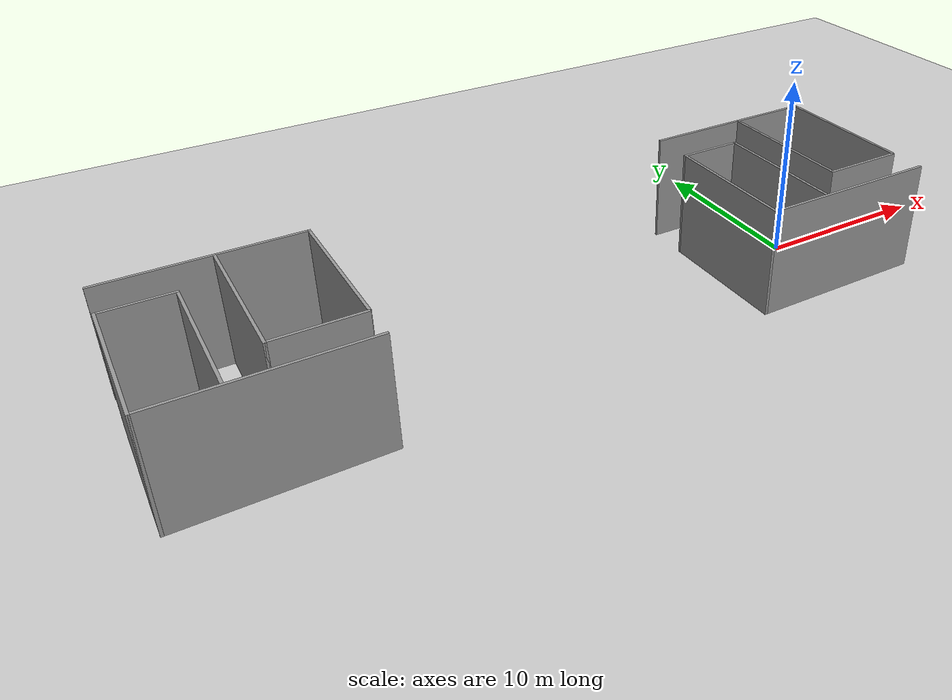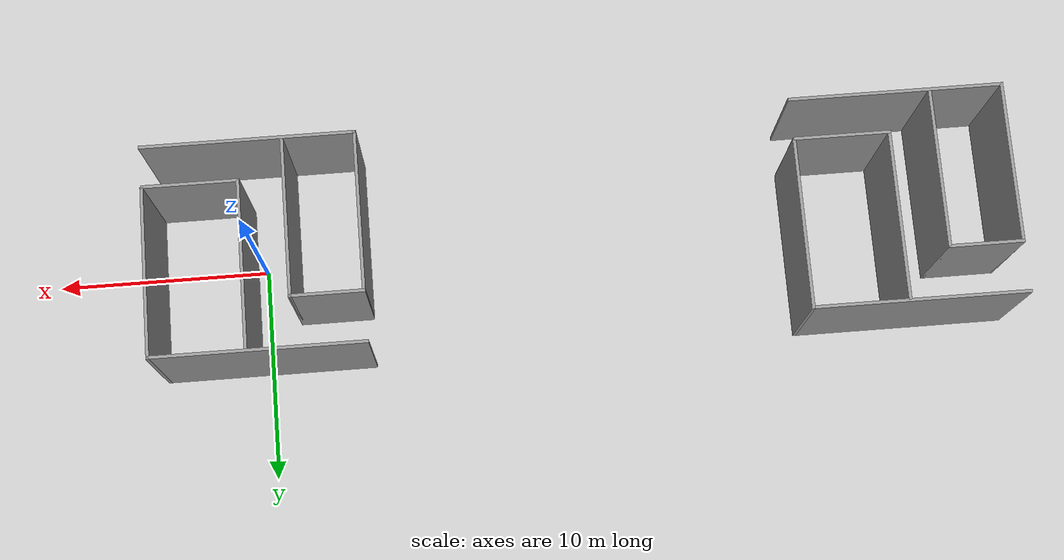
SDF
<sdf version="1.6">
 <world name="default">
  <light name="sun" type="directional">
   <pose>0 0 10 0 -0 0</pose>
   <diffuse>0.8 0.8 0.8 1</diffuse>
   <specular>0.2 0.2 0.2 1</specular>
   <attenuation>
    <range>1000</range>
    <constant>0.9</constant>
    <linear>0.01</linear>
    <quadratic>0.001</quadratic>
   </attenuation>
   <direction>-0.5 0.1 -0.9</direction>
  </light>
  <model name="ground_plane">
   <static>1</static>
   <link name="link">
    <collision name="collision">
     <geometry><plane><normal>0 0 1</normal><size>100 100</size></plane></geometry>
     <surface>
      <contact><collide_bitmask>65535</collide_bitmask></contact>
      <friction><ode><mu>100</mu><mu2>50</mu2></ode></friction>
     </surface>
    </collision>
    <visual name="visual">
     <cast_shadows>0</cast_shadows>
     <geometry><plane><normal>0 0 1</normal><size>100 100</size></plane></geometry>
     <material>
      <script><uri>file://media/materials/scripts/gazebo.material</uri><name>Gazebo/Grey</name></script>
     </material>
    </visual>
   </link>
  </model>
  <gravity>0 0 -9.8</gravity>
  <magnetic_field>6e-06 2.3e-05 -4.2e-05</magnetic_field>
  <atmosphere type="adiabatic"/>
  <physics name="default_physics" default="0" type="ode">
   <max_step_size>0.001</max_step_size>
   <real_time_factor>1</real_time_factor>
   <real_time_update_rate>1000</real_time_update_rate>
  </physics>
  <scene><ambient>0.4 0.4 0.4 1</ambient><background>0.7 0.7 0.7 1</background><shadows>1</shadows></scene>
  <spherical_coordinates>
   <surface_model>EARTH_WGS84</surface_model>
   <latitude_deg>0</latitude_deg>
   <longitude_deg>0</longitude_deg>
   <elevation>0</elevation>
   <heading_deg>0</heading_deg>
  </spherical_coordinates>
  <model name="floor12">
   <link name="Wall_10">
    <collision name="Wall_10_Collision">
     <geometry><box><size>4.5 0.15 6</size></box></geometry>
     <pose>0 0 3 0 -0 0</pose>
    </collision>
    <visual name="Wall_10_Visual">
     <pose>0 0 3 0 -0 0</pose>
     <geometry><box><size>4.5 0.15 6</size></box></geometry>
     <material>
      <script><uri>file://media/materials/scripts/gazebo.material</uri><name>Gazebo/Grey</name></script>
      <ambient>1 1 1 1</ambient>
     </material>
     <meta><layer>0</layer></meta>
    </visual>
    <pose>2.7 -3.025 0 0 -0 0</pose>
   </link>
   <link name="Wall_12">
    <collision name="Wall_12_Collision">
     <geometry><box><size>7.5 0.15 6</size></box></geometry>
     <pose>0 0 3 0 -0 0</pose>
    </collision>
    <visual name="Wall_12_Visual">
     <pose>0 0 3 0 -0 0</pose>
     <geometry><box><size>7.5 0.15 6</size></box></geometry>
     <material>
      <script><uri>file://media/materials/scripts/gazebo.material</uri><name>Gazebo/Grey</name></script>
      <ambient>1 1 1 1</ambient>
     </material>
     <meta><layer>0</layer></meta>
    </visual>
    <pose>-1.575 -1.1 0 0 0 -1.5708</pose>
   </link>
   <link name="Wall_14">
    <collision name="Wall_14_Collision">
     <geometry><box><size>7.65 0.15 6</size></box></geometry>
     <pose>0 0 3 0 -0 0</pose>
    </collision>
    <visual name="Wall_14_Visual">
     <pose>0 0 3 0 -0 0</pose>
     <geometry><box><size>7.65 0.15 6</size></box></geometry>
     <material>
      <script><uri>file://media/materials/scripts/gazebo.material</uri><name>Gazebo/Grey</name></script>
      <ambient>1 1 1 1</ambient>
     </material>
     <meta><layer>0</layer></meta>
    </visual>
    <pose>-4.925 -1.175 0 0 0 -1.5708</pose>
   </link>
   <link name="Wall_16">
    <collision name="Wall_16_Collision">
     <geometry><box><size>8 0.15 6</size></box></geometry>
     <pose>0 0 3 0 -0 0</pose>
    </collision>
    <visual name="Wall_16_Visual">
     <pose>0 0 3 0 -0 0</pose>
     <geometry><box><size>8 0.15 6</size></box></geometry>
     <material>
      <script><uri>file://media/materials/scripts/gazebo.material</uri><name>Gazebo/Grey</name></script>
      <ambient>1 1 1 1</ambient>
     </material>
     <meta><layer>0</layer></meta>
    </visual>
    <pose>4.925 1 0 0 0 -1.5708</pose>
   </link>
   <link name="Wall_2">
    <collision name="Wall_2_Collision">
     <geometry><box><size>10 0.15 6</size></box></geometry>
     <pose>0 0 3 0 -0 0</pose>
    </collision>
    <visual name="Wall_2_Visual">
     <pose>0 0 3 0 -0 0</pose>
     <geometry><box><size>10 0.15 6</size></box></geometry>
     <material>
      <script><uri>file://media/materials/scripts/gazebo.material</uri><name>Gazebo/Grey</name></script>
      <ambient>1 1 1 1</ambient>
     </material>
     <meta><layer>0</layer></meta>
    </visual>
    <pose>0 -4.925 0 0 -0 0</pose>
   </link>
   <link name="Wall_4">
    <collision name="Wall_4_Collision">
     <geometry><box><size>10 0.15 6</size></box></geometry>
     <pose>0 0 3 0 -0 0</pose>
    </collision>
    <visual name="Wall_4_Visual">
     <pose>0 0 3 0 -0 0</pose>
     <geometry><box><size>10 0.15 6</size></box></geometry>
     <material>
      <script><uri>file://media/materials/scripts/gazebo.material</uri><name>Gazebo/Grey</name></script>
      <ambient>1 1 1 1</ambient>
     </material>
     <meta><layer>0</layer></meta>
    </visual>
    <pose>0 4.925 0 0 -0 3.14159</pose>
   </link>
   <link name="Wall_7">
    <collision name="Wall_7_Collision">
     <geometry><box><size>3.5 0.15 6</size></box></geometry>
     <pose>0 0 3 0 -0 0</pose>
    </collision>
    <visual name="Wall_7_Visual">
     <pose>0 0 3 0 -0 0</pose>
     <geometry><box><size>3.5 0.15 6</size></box></geometry>
     <material>
      <script><uri>file://media/materials/scripts/gazebo.material</uri><name>Gazebo/Grey</name></script>
      <ambient>1 1 1 1</ambient>
     </material>
     <meta><layer>0</layer></meta>
    </visual>
    <pose>-3.25 2.575 0 0 -0 0</pose>
   </link>
   <link name="Wall_9">
    <collision name="Wall_9_Collision">
     <geometry><box><size>8 0.15 6</size></box></geometry>
     <pose>0 0 3 0 -0 0</pose>
    </collision>
    <visual name="Wall_9_Visual">
     <pose>0 0 3 0 -0 0</pose>
     <geometry><box><size>8 0.15 6</size></box></geometry>
     <material>
      <script><uri>file://media/materials/scripts/gazebo.material</uri><name>Gazebo/Grey</name></script>
      <ambient>1 1 1 1</ambient>
     </material>
     <meta><layer>0</layer></meta>
    </visual>
    <pose>0.525 0.9 0 0 0 -1.5708</pose>
   </link>
   <static>1</static>
  </model>
  <model name="floor12_clone">
   <pose>-30 0 0 0 -0 0</pose>
   <link name="Wall_10">
    <collision name="Wall_10_Collision">
     <geometry><box><size>4.5 0.15 6</size></box></geometry>
     <pose>0 0 3 0 -0 0</pose>
    </collision>
    <visual name="Wall_10_Visual">
     <pose>0 0 3 0 -0 0</pose>
     <geometry><box><size>4.5 0.15 6</size></box></geometry>
     <material>
      <script><uri>file://media/materials/scripts/gazebo.material</uri><name>Gazebo/Grey</name></script>
      <ambient>1 1 1 1</ambient>
     </material>
     <meta><layer>0</layer></meta>
    </visual>
    <pose>2.7 -3.025 0 0 -0 0</pose>
   </link>
   <link name="Wall_12">
    <collision name="Wall_12_Collision">
     <geometry><box><size>7.5 0.15 6</size></box></geometry>
     <pose>0 0 3 0 -0 0</pose>
    </collision>
    <visual name="Wall_12_Visual">
     <pose>0 0 3 0 -0 0</pose>
     <geometry><box><size>7.5 0.15 6</size></box></geometry>
     <material>
      <script><uri>file://media/materials/scripts/gazebo.material</uri><name>Gazebo/Grey</name></script>
      <ambient>1 1 1 1</ambient>
     </material>
     <meta><layer>0</layer></meta>
    </visual>
    <pose>-1.575 -1.1 0 0 0 -1.5708</pose>
   </link>
   <link name="Wall_14">
    <collision name="Wall_14_Collision">
     <geometry><box><size>7.65 0.15 6</size></box></geometry>
     <pose>0 0 3 0 -0 0</pose>
    </collision>
    <visual name="Wall_14_Visual">
     <pose>0 0 3 0 -0 0</pose>
     <geometry><box><size>7.65 0.15 6</size></box></geometry>
     <material>
      <script><uri>file://media/materials/scripts/gazebo.material</uri><name>Gazebo/Grey</name></script>
      <ambient>1 1 1 1</ambient>
     </material>
     <meta><layer>0</layer></meta>
    </visual>
    <pose>-4.925 -1.175 0 0 0 -1.5708</pose>
   </link>
   <link name="Wall_16">
    <collision name="Wall_16_Collision">
     <geometry><box><size>8 0.15 6</size></box></geometry>
     <pose>0 0 3 0 -0 0</pose>
    </collision>
    <visual name="Wall_16_Visual">
     <pose>0 0 3 0 -0 0</pose>
     <geometry><box><size>8 0.15 6</size></box></geometry>
     <material>
      <script><uri>file://media/materials/scripts/gazebo.material</uri><name>Gazebo/Grey</name></script>
      <ambient>1 1 1 1</ambient>
     </material>
     <meta><layer>0</layer></meta>
    </visual>
    <pose>4.925 1 0 0 0 -1.5708</pose>
   </link>
   <link name="Wall_2">
    <collision name="Wall_2_Collision">
     <geometry><box><size>10 0.15 6</size></box></geometry>
     <pose>0 0 3 0 -0 0</pose>
    </collision>
    <visual name="Wall_2_Visual">
     <pose>0 0 3 0 -0 0</pose>
     <geometry><box><size>10 0.15 6</size></box></geometry>
     <material>
      <script><uri>file://media/materials/scripts/gazebo.material</uri><name>Gazebo/Grey</name></script>
      <ambient>1 1 1 1</ambient>
     </material>
     <meta><layer>0</layer></meta>
    </visual>
    <pose>0 -4.925 0 0 -0 0</pose>
   </link>
   <link name="Wall_4">
    <collision name="Wall_4_Collision">
     <geometry><box><size>10 0.15 6</size></box></geometry>
     <pose>0 0 3 0 -0 0</pose>
    </collision>
    <visual name="Wall_4_Visual">
     <pose>0 0 3 0 -0 0</pose>
     <geometry><box><size>10 0.15 6</size></box></geometry>
     <material>
      <script><uri>file://media/materials/scripts/gazebo.material</uri><name>Gazebo/Grey</name></script>
      <ambient>1 1 1 1</ambient>
     </material>
     <meta><layer>0</layer></meta>
    </visual>
    <pose>0 4.925 0 0 -0 3.14159</pose>
   </link>
   <link name="Wall_7">
    <collision name="Wall_7_Collision">
     <geometry><box><size>3.5 0.15 6</size></box></geometry>
     <pose>0 0 3 0 -0 0</pose>
    </collision>
    <visual name="Wall_7_Visual">
     <pose>0 0 3 0 -0 0</pose>
     <geometry><box><size>3.5 0.15 6</size></box></geometry>
     <material>
      <script><uri>file://media/materials/scripts/gazebo.material</uri><name>Gazebo/Grey</name></script>
      <ambient>1 1 1 1</ambient>
     </material>
     <meta><layer>0</layer></meta>
    </visual>
    <pose>-3.25 2.575 0 0 -0 0</pose>
   </link>
   <link name="Wall_9">
    <collision name="Wall_9_Collision">
     <geometry><box><size>8 0.15 6</size></box></geometry>
     <pose>0 0 3 0 -0 0</pose>
    </collision>
    <visual name="Wall_9_Visual">
     <pose>0 0 3 0 -0 0</pose>
     <geometry><box><size>8 0.15 6</size></box></geometry>
     <material>
      <script><uri>file://media/materials/scripts/gazebo.material</uri><name>Gazebo/Grey</name></script>
      <ambient>1 1 1 1</ambient>
     </material>
     <meta><layer>0</layer></meta>
    </visual>
    <pose>0.525 0.9 0 0 0 -1.5708</pose>
   </link>
   <static>1</static>
  </model>
 </world>
</sdf>
